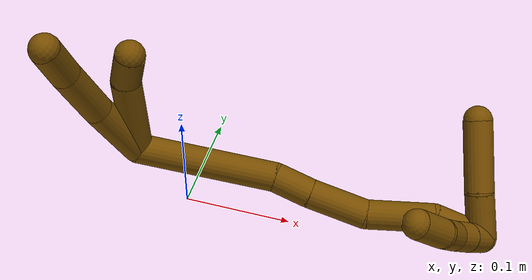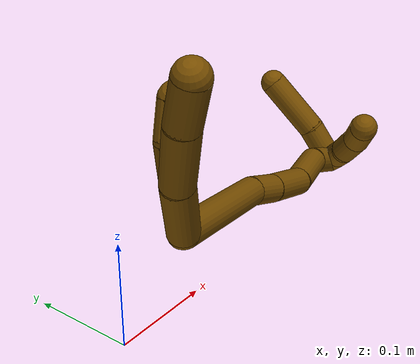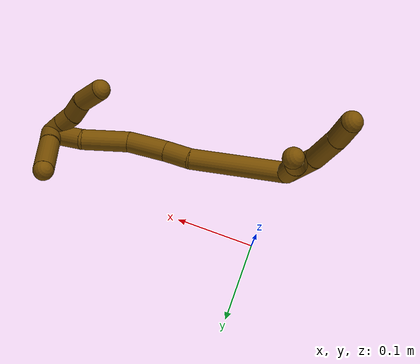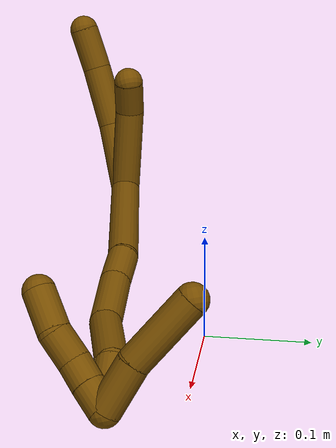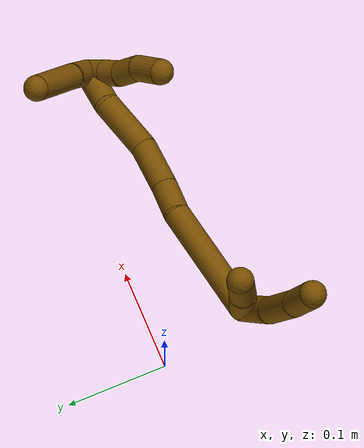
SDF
<sdf version="1.7">
 <world name="default">
  <model name="photoneo_s_sensor">
   <static>1</static>
   <pose>0 0 2 1.57079 1.57079 3.14159</pose>
   <link name="link">
    <inertial><mass>0.1</mass></inertial>
    <sensor name="sensor" type="depth">
     <update_rate>30</update_rate>
     <camera>
      <horizontal_fov>1.22</horizontal_fov>
      <image><width>1920</width><height>1200</height><format>B8G8R8</format></image>
      <clip><near>0.1</near><far>4</far></clip>
      <depth_camera><output>points</output></depth_camera>
     </camera>
     <plugin name="camera_plugin" filename="libgazebo_ros_depth_camera.so">
      <baseline>0.2</baseline>
      <alwaysOn>1</alwaysOn>
      <updateRate>0.0</updateRate>
      <cameraName>camera_ir</cameraName>
      <imageTopicName>/camera/color/image_raw</imageTopicName>
      <cameraInfoTopicName>/camera/color/camera_info</cameraInfoTopicName>
      <depthImageTopicName>/camera/depth/image_raw</depthImageTopicName>
      <depthImageCameraInfoTopicName>/camera/depth/camera_info</depthImageCameraInfoTopicName>
      <pointCloudTopicName>/camera/depth/points</pointCloudTopicName>
      <frameName>fr_optical</frameName>
      <pointCloudCutoff>0.1</pointCloudCutoff>
      <pointCloudCutoffMax>2.0</pointCloudCutoffMax>
      <distortionK1>0</distortionK1>
      <distortionK2>0</distortionK2>
      <distortionK3>0</distortionK3>
      <distortionT1>0</distortionT1>
      <distortionT2>0</distortionT2>
      <CxPrime>0</CxPrime>
      <Cx>0</Cx>
      <Cy>0</Cy>
      <focalLength>0</focalLength>
      <hackBaseline>0</hackBaseline>
     </plugin>
    </sensor>
   </link>
  </model>
  <model name="12">
   <static>0</static>
   <link name="12">
    <collision name="collision-cylinder-e_1_2_8">
     <pose>0.001007 0.001235 0.029612 -0.041697 0.033976 -0.000709</pose>
     <geometry><cylinder><radius>0.0125</radius><length>0.059311</length></cylinder></geometry>
     <surface>
      <friction><ode><mu>1.16</mu><mu2>1.16</mu2><slip1>0</slip1><slip2>0</slip2></ode></friction>
      <contact><ode><kp>1e+06</kp><kd>1</kd><max_vel>0</max_vel><min_depth>0.001</min_depth></ode></contact>
     </surface>
    </collision>
    <visual name="visual-cylinder-e_1_2_8">
     <pose>0.001007 0.001235 0.029612 -0.041697 0.033976 -0.000709</pose>
     <geometry><cylinder><radius>0.0125</radius><length>0.059311</length></cylinder></geometry>
     <material><ambient>0.466667 0.301961 0 1</ambient></material>
    </visual>
    <collision name="collision-cylinder-e_2_8_9">
     <pose>0.006759 0.00497 0.08556 -0.094598 0.177458 -0.008422</pose>
     <geometry><cylinder><radius>0.0125</radius><length>0.05375</length></cylinder></geometry>
     <surface>
      <friction><ode><mu>1.16</mu><mu2>1.16</mu2><slip1>0</slip1><slip2>0</slip2></ode></friction>
      <contact><ode><kp>1e+06</kp><kd>1</kd><max_vel>0</max_vel><min_depth>0.001</min_depth></ode></contact>
     </surface>
    </collision>
    <visual name="visual-cylinder-e_2_8_9">
     <pose>0.006759 0.00497 0.08556 -0.094598 0.177458 -0.008422</pose>
     <geometry><cylinder><radius>0.0125</radius><length>0.05375</length></cylinder></geometry>
     <material><ambient>0.466667 0.301961 0 1</ambient></material>
    </visual>
    <collision name="collision-cylinder-e_3_9_6">
     <pose>0.016353 0.009718 0.129573 -0.126567 0.265705 -0.016937</pose>
     <geometry><cylinder><radius>0.0125</radius><length>0.036939</length></cylinder></geometry>
     <surface>
      <friction><ode><mu>1.16</mu><mu2>1.16</mu2><slip1>0</slip1><slip2>0</slip2></ode></friction>
      <contact><ode><kp>1e+06</kp><kd>1</kd><max_vel>0</max_vel><min_depth>0.001</min_depth></ode></contact>
     </surface>
    </collision>
    <visual name="visual-cylinder-e_3_9_6">
     <pose>0.016353 0.009718 0.129573 -0.126567 0.265705 -0.016937</pose>
     <geometry><cylinder><radius>0.0125</radius><length>0.036939</length></cylinder></geometry>
     <material><ambient>0.466667 0.301961 0 1</ambient></material>
    </visual>
    <collision name="collision-cylinder-e_1_2_10">
     <pose>0.003299 0.017262 0.0311 -0.506706 0.09247 -0.023958</pose>
     <geometry><cylinder><radius>0.0125</radius><length>0.071444</length></cylinder></geometry>
     <surface>
      <friction><ode><mu>1.16</mu><mu2>1.16</mu2><slip1>0</slip1><slip2>0</slip2></ode></friction>
      <contact><ode><kp>1e+06</kp><kd>1</kd><max_vel>0</max_vel><min_depth>0.001</min_depth></ode></contact>
     </surface>
    </collision>
    <visual name="visual-cylinder-e_1_2_10">
     <pose>0.003299 0.017262 0.0311 -0.506706 0.09247 -0.023958</pose>
     <geometry><cylinder><radius>0.0125</radius><length>0.071444</length></cylinder></geometry>
     <material><ambient>0.466667 0.301961 0 1</ambient></material>
    </visual>
    <collision name="collision-cylinder-e_2_10_5">
     <pose>0.011288 0.04296 0.072721 -0.675873 0.334772 -0.118617</pose>
     <geometry><cylinder><radius>0.0125</radius><length>0.028556</length></cylinder></geometry>
     <surface>
      <friction><ode><mu>1.16</mu><mu2>1.16</mu2><slip1>0</slip1><slip2>0</slip2></ode></friction>
      <contact><ode><kp>1e+06</kp><kd>1</kd><max_vel>0</max_vel><min_depth>0.001</min_depth></ode></contact>
     </surface>
    </collision>
    <visual name="visual-cylinder-e_2_10_5">
     <pose>0.011288 0.04296 0.072721 -0.675873 0.334772 -0.118617</pose>
     <geometry><cylinder><radius>0.0125</radius><length>0.028556</length></cylinder></geometry>
     <material><ambient>0.466667 0.301961 0 1</ambient></material>
    </visual>
    <collision name="collision-cylinder-e_1_2_11">
     <pose>0.034035 0.030005 -0.036315 -2.45106 0.625669 -1.46487</pose>
     <geometry><cylinder><radius>0.0125</radius><length>0.116232</length></cylinder></geometry>
     <surface>
      <friction><ode><mu>1.16</mu><mu2>1.16</mu2><slip1>0</slip1><slip2>0</slip2></ode></friction>
      <contact><ode><kp>1e+06</kp><kd>1</kd><max_vel>0</max_vel><min_depth>0.001</min_depth></ode></contact>
     </surface>
    </collision>
    <visual name="visual-cylinder-e_1_2_11">
     <pose>0.034035 0.030005 -0.036315 -2.45106 0.625669 -1.46487</pose>
     <geometry><cylinder><radius>0.0125</radius><length>0.116232</length></cylinder></geometry>
     <material><ambient>0.466667 0.301961 0 1</ambient></material>
    </visual>
    <collision name="collision-cylinder-e_2_11_12">
     <pose>0.078866 0.064976 -0.083496 -2.71285 0.734872 -2.11207</pose>
     <geometry><cylinder><radius>0.0125</radius><length>0.032204</length></cylinder></geometry>
     <surface>
      <friction><ode><mu>1.16</mu><mu2>1.16</mu2><slip1>0</slip1><slip2>0</slip2></ode></friction>
      <contact><ode><kp>1e+06</kp><kd>1</kd><max_vel>0</max_vel><min_depth>0.001</min_depth></ode></contact>
     </surface>
    </collision>
    <visual name="visual-cylinder-e_2_11_12">
     <pose>0.078866 0.064976 -0.083496 -2.71285 0.734872 -2.11207</pose>
     <geometry><cylinder><radius>0.0125</radius><length>0.032204</length></cylinder></geometry>
     <material><ambient>0.466667 0.301961 0 1</ambient></material>
    </visual>
    <collision name="collision-cylinder-e_3_12_13">
     <pose>0.105691 0.079391 -0.110786 -2.61955 0.702089 -1.88121</pose>
     <geometry><cylinder><radius>0.0125</radius><length>0.049637</length></cylinder></geometry>
     <surface>
      <friction><ode><mu>1.16</mu><mu2>1.16</mu2><slip1>0</slip1><slip2>0</slip2></ode></friction>
      <contact><ode><kp>1e+06</kp><kd>1</kd><max_vel>0</max_vel><min_depth>0.001</min_depth></ode></contact>
     </surface>
    </collision>
    <visual name="visual-cylinder-e_3_12_13">
     <pose>0.105691 0.079391 -0.110786 -2.61955 0.702089 -1.88121</pose>
     <geometry><cylinder><radius>0.0125</radius><length>0.049637</length></cylinder></geometry>
     <material><ambient>0.466667 0.301961 0 1</ambient></material>
    </visual>
    <collision name="collision-cylinder-e_4_13_14">
     <pose>0.136698 0.107178 -0.143329 -2.29184 0.550291 -1.11572</pose>
     <geometry><cylinder><radius>0.0125</radius><length>0.057286</length></cylinder></geometry>
     <surface>
      <friction><ode><mu>1.16</mu><mu2>1.16</mu2><slip1>0</slip1><slip2>0</slip2></ode></friction>
      <contact><ode><kp>1e+06</kp><kd>1</kd><max_vel>0</max_vel><min_depth>0.001</min_depth></ode></contact>
     </surface>
    </collision>
    <visual name="visual-cylinder-e_4_13_14">
     <pose>0.136698 0.107178 -0.143329 -2.29184 0.550291 -1.11572</pose>
     <geometry><cylinder><radius>0.0125</radius><length>0.057286</length></cylinder></geometry>
     <material><ambient>0.466667 0.301961 0 1</ambient></material>
    </visual>
    <collision name="collision-cylinder-e_5_14_1">
     <pose>0.164877 0.133313 -0.175668 -2.69355 0.632823 -1.92565</pose>
     <geometry><cylinder><radius>0.0125</radius><length>0.044641</length></cylinder></geometry>
     <surface>
      <friction><ode><mu>1.16</mu><mu2>1.16</mu2><slip1>0</slip1><slip2>0</slip2></ode></friction>
      <contact><ode><kp>1e+06</kp><kd>1</kd><max_vel>0</max_vel><min_depth>0.001</min_depth></ode></contact>
     </surface>
    </collision>
    <visual name="visual-cylinder-e_5_14_1">
     <pose>0.164877 0.133313 -0.175668 -2.69355 0.632823 -1.92565</pose>
     <geometry><cylinder><radius>0.0125</radius><length>0.044641</length></cylinder></geometry>
     <material><ambient>0.466667 0.301961 0 1</ambient></material>
    </visual>
    <collision name="collision-cylinder-e_1_1_15">
     <pose>0.171608 0.153902 -0.177949 -0.742437 -0.329481 0.129248</pose>
     <geometry><cylinder><radius>0.0125</radius><length>0.039991</length></cylinder></geometry>
     <surface>
      <friction><ode><mu>1.16</mu><mu2>1.16</mu2><slip1>0</slip1><slip2>0</slip2></ode></friction>
      <contact><ode><kp>1e+06</kp><kd>1</kd><max_vel>0</max_vel><min_depth>0.001</min_depth></ode></contact>
     </surface>
    </collision>
    <visual name="visual-cylinder-e_1_1_15">
     <pose>0.171608 0.153902 -0.177949 -0.742437 -0.329481 0.129248</pose>
     <geometry><cylinder><radius>0.0125</radius><length>0.039991</length></cylinder></geometry>
     <material><ambient>0.466667 0.301961 0 1</ambient></material>
    </visual>
    <collision name="collision-cylinder-e_2_15_4">
     <pose>0.151826 0.187941 -0.147528 -0.911102 -0.459699 0.228271</pose>
     <geometry><cylinder><radius>0.0125</radius><length>0.060009</length></cylinder></geometry>
     <surface>
      <friction><ode><mu>1.16</mu><mu2>1.16</mu2><slip1>0</slip1><slip2>0</slip2></ode></friction>
      <contact><ode><kp>1e+06</kp><kd>1</kd><max_vel>0</max_vel><min_depth>0.001</min_depth></ode></contact>
     </surface>
    </collision>
    <visual name="visual-cylinder-e_2_15_4">
     <pose>0.151826 0.187941 -0.147528 -0.911102 -0.459699 0.228271</pose>
     <geometry><cylinder><radius>0.0125</radius><length>0.060009</length></cylinder></geometry>
     <material><ambient>0.466667 0.301961 0 1</ambient></material>
    </visual>
    <collision name="collision-cylinder-e_1_1_16">
     <pose>0.179582 0.136616 -0.182204 0.434479 0.139957 0.03094</pose>
     <geometry><cylinder><radius>0.0125</radius><length>0.021566</length></cylinder></geometry>
     <surface>
      <friction><ode><mu>1.16</mu><mu2>1.16</mu2><slip1>0</slip1><slip2>0</slip2></ode></friction>
      <contact><ode><kp>1e+06</kp><kd>1</kd><max_vel>0</max_vel><min_depth>0.001</min_depth></ode></contact>
     </surface>
    </collision>
    <visual name="visual-cylinder-e_1_1_16">
     <pose>0.179582 0.136616 -0.182204 0.434479 0.139957 0.03094</pose>
     <geometry><cylinder><radius>0.0125</radius><length>0.021566</length></cylinder></geometry>
     <material><ambient>0.466667 0.301961 0 1</ambient></material>
    </visual>
    <collision name="collision-cylinder-e_2_16_17">
     <pose>0.182066 0.128064 -0.163409 0.418967 0.097935 0.020837</pose>
     <geometry><cylinder><radius>0.0125</radius><length>0.020042</length></cylinder></geometry>
     <surface>
      <friction><ode><mu>1.16</mu><mu2>1.16</mu2><slip1>0</slip1><slip2>0</slip2></ode></friction>
      <contact><ode><kp>1e+06</kp><kd>1</kd><max_vel>0</max_vel><min_depth>0.001</min_depth></ode></contact>
     </surface>
    </collision>
    <visual name="visual-cylinder-e_2_16_17">
     <pose>0.182066 0.128064 -0.163409 0.418967 0.097935 0.020837</pose>
     <geometry><cylinder><radius>0.0125</radius><length>0.020042</length></cylinder></geometry>
     <material><ambient>0.466667 0.301961 0 1</ambient></material>
    </visual>
    <collision name="collision-cylinder-e_3_17_18">
     <pose>0.186982 0.120895 -0.142617 0.260315 0.314788 0.041543</pose>
     <geometry><cylinder><radius>0.0125</radius><length>0.025426</length></cylinder></geometry>
     <surface>
      <friction><ode><mu>1.16</mu><mu2>1.16</mu2><slip1>0</slip1><slip2>0</slip2></ode></friction>
      <contact><ode><kp>1e+06</kp><kd>1</kd><max_vel>0</max_vel><min_depth>0.001</min_depth></ode></contact>
     </surface>
    </collision>
    <visual name="visual-cylinder-e_3_17_18">
     <pose>0.186982 0.120895 -0.142617 0.260315 0.314788 0.041543</pose>
     <geometry><cylinder><radius>0.0125</radius><length>0.025426</length></cylinder></geometry>
     <material><ambient>0.466667 0.301961 0 1</ambient></material>
    </visual>
    <collision name="collision-cylinder-e_4_18_3">
     <pose>0.190823 0.112977 -0.11517 0.295948 -0.005777 -0.000861</pose>
     <geometry><cylinder><radius>0.0125</radius><length>0.032966</length></cylinder></geometry>
     <surface>
      <friction><ode><mu>1.16</mu><mu2>1.16</mu2><slip1>0</slip1><slip2>0</slip2></ode></friction>
      <contact><ode><kp>1e+06</kp><kd>1</kd><max_vel>0</max_vel><min_depth>0.001</min_depth></ode></contact>
     </surface>
    </collision>
    <visual name="visual-cylinder-e_4_18_3">
     <pose>0.190823 0.112977 -0.11517 0.295948 -0.005777 -0.000861</pose>
     <geometry><cylinder><radius>0.0125</radius><length>0.032966</length></cylinder></geometry>
     <material><ambient>0.466667 0.301961 0 1</ambient></material>
    </visual>
    <collision name="collision-sphere-3">
     <pose>0.190728 0.10817 -0.099403 0 -0 0</pose>
     <geometry><sphere><radius>0.0125</radius></sphere></geometry>
     <surface>
      <friction><ode><mu>1.16</mu><mu2>1.16</mu2><slip1>0</slip1><slip2>0</slip2></ode></friction>
      <contact><ode><kp>1e+06</kp><kd>1</kd><max_vel>0</max_vel><min_depth>0.001</min_depth></ode></contact>
     </surface>
    </collision>
    <visual name="visual-sphere-3">
     <pose>0.190728 0.10817 -0.099403 0 -0 0</pose>
     <geometry><sphere><radius>0.0125</radius></sphere></geometry>
     <material><ambient>0.466667 0.301961 0 1</ambient></material>
    </visual>
    <collision name="collision-sphere-5">
     <pose>0.015979 0.051396 0.083241 0 -0 0</pose>
     <geometry><sphere><radius>0.0125</radius></sphere></geometry>
     <surface>
      <friction><ode><mu>1.16</mu><mu2>1.16</mu2><slip1>0</slip1><slip2>0</slip2></ode></friction>
      <contact><ode><kp>1e+06</kp><kd>1</kd><max_vel>0</max_vel><min_depth>0.001</min_depth></ode></contact>
     </surface>
    </collision>
    <visual name="visual-sphere-5">
     <pose>0.015979 0.051396 0.083241 0 -0 0</pose>
     <geometry><sphere><radius>0.0125</radius></sphere></geometry>
     <material><ambient>0.466667 0.301961 0 1</ambient></material>
    </visual>
    <collision name="collision-sphere-10">
     <pose>0.006597 0.034524 0.0622 0 -0 0</pose>
     <geometry><sphere><radius>0.0125</radius></sphere></geometry>
     <surface>
      <friction><ode><mu>1.16</mu><mu2>1.16</mu2><slip1>0</slip1><slip2>0</slip2></ode></friction>
      <contact><ode><kp>1e+06</kp><kd>1</kd><max_vel>0</max_vel><min_depth>0.001</min_depth></ode></contact>
     </surface>
    </collision>
    <visual name="visual-sphere-10">
     <pose>0.006597 0.034524 0.0622 0 -0 0</pose>
     <geometry><sphere><radius>0.0125</radius></sphere></geometry>
     <material><ambient>0.466667 0.301961 0 1</ambient></material>
    </visual>
    <collision name="collision-sphere-6">
     <pose>0.021203 0.011967 0.147252 0 -0 0</pose>
     <geometry><sphere><radius>0.0125</radius></sphere></geometry>
     <surface>
      <friction><ode><mu>1.16</mu><mu2>1.16</mu2><slip1>0</slip1><slip2>0</slip2></ode></friction>
      <contact><ode><kp>1e+06</kp><kd>1</kd><max_vel>0</max_vel><min_depth>0.001</min_depth></ode></contact>
     </surface>
    </collision>
    <visual name="visual-sphere-6">
     <pose>0.021203 0.011967 0.147252 0 -0 0</pose>
     <geometry><sphere><radius>0.0125</radius></sphere></geometry>
     <material><ambient>0.466667 0.301961 0 1</ambient></material>
    </visual>
    <collision name="collision-sphere-9">
     <pose>0.011503 0.007468 0.111895 0 -0 0</pose>
     <geometry><sphere><radius>0.0125</radius></sphere></geometry>
     <surface>
      <friction><ode><mu>1.16</mu><mu2>1.16</mu2><slip1>0</slip1><slip2>0</slip2></ode></friction>
      <contact><ode><kp>1e+06</kp><kd>1</kd><max_vel>0</max_vel><min_depth>0.001</min_depth></ode></contact>
     </surface>
    </collision>
    <visual name="visual-sphere-9">
     <pose>0.011503 0.007468 0.111895 0 -0 0</pose>
     <geometry><sphere><radius>0.0125</radius></sphere></geometry>
     <material><ambient>0.466667 0.301961 0 1</ambient></material>
    </visual>
    <collision name="collision-sphere-2">
     <geometry><sphere><radius>0.0125</radius></sphere></geometry>
     <surface>
      <friction><ode><mu>1.16</mu><mu2>1.16</mu2><slip1>0</slip1><slip2>0</slip2></ode></friction>
      <contact><ode><kp>1e+06</kp><kd>1</kd><max_vel>0</max_vel><min_depth>0.001</min_depth></ode></contact>
     </surface>
    </collision>
    <visual name="visual-sphere-2">
     <geometry><sphere><radius>0.0125</radius></sphere></geometry>
     <material><ambient>0.466667 0.301961 0 1</ambient></material>
    </visual>
    <collision name="collision-sphere-8">
     <pose>0.002015 0.002471 0.059225 0 -0 0</pose>
     <geometry><sphere><radius>0.0125</radius></sphere></geometry>
     <surface>
      <friction><ode><mu>1.16</mu><mu2>1.16</mu2><slip1>0</slip1><slip2>0</slip2></ode></friction>
      <contact><ode><kp>1e+06</kp><kd>1</kd><max_vel>0</max_vel><min_depth>0.001</min_depth></ode></contact>
     </surface>
    </collision>
    <visual name="visual-sphere-8">
     <pose>0.002015 0.002471 0.059225 0 -0 0</pose>
     <geometry><sphere><radius>0.0125</radius></sphere></geometry>
     <material><ambient>0.466667 0.301961 0 1</ambient></material>
    </visual>
    <collision name="collision-sphere-11">
     <pose>0.06807 0.060009 -0.072631 0 -0 0</pose>
     <geometry><sphere><radius>0.0125</radius></sphere></geometry>
     <surface>
      <friction><ode><mu>1.16</mu><mu2>1.16</mu2><slip1>0</slip1><slip2>0</slip2></ode></friction>
      <contact><ode><kp>1e+06</kp><kd>1</kd><max_vel>0</max_vel><min_depth>0.001</min_depth></ode></contact>
     </surface>
    </collision>
    <visual name="visual-sphere-11">
     <pose>0.06807 0.060009 -0.072631 0 -0 0</pose>
     <geometry><sphere><radius>0.0125</radius></sphere></geometry>
     <material><ambient>0.466667 0.301961 0 1</ambient></material>
    </visual>
    <collision name="collision-sphere-12">
     <pose>0.089663 0.069942 -0.094361 0 -0 0</pose>
     <geometry><sphere><radius>0.0125</radius></sphere></geometry>
     <surface>
      <friction><ode><mu>1.16</mu><mu2>1.16</mu2><slip1>0</slip1><slip2>0</slip2></ode></friction>
      <contact><ode><kp>1e+06</kp><kd>1</kd><max_vel>0</max_vel><min_depth>0.001</min_depth></ode></contact>
     </surface>
    </collision>
    <visual name="visual-sphere-12">
     <pose>0.089663 0.069942 -0.094361 0 -0 0</pose>
     <geometry><sphere><radius>0.0125</radius></sphere></geometry>
     <material><ambient>0.466667 0.301961 0 1</ambient></material>
    </visual>
    <collision name="collision-sphere-13">
     <pose>0.121719 0.08884 -0.127211 0 -0 0</pose>
     <geometry><sphere><radius>0.0125</radius></sphere></geometry>
     <surface>
      <friction><ode><mu>1.16</mu><mu2>1.16</mu2><slip1>0</slip1><slip2>0</slip2></ode></friction>
      <contact><ode><kp>1e+06</kp><kd>1</kd><max_vel>0</max_vel><min_depth>0.001</min_depth></ode></contact>
     </surface>
    </collision>
    <visual name="visual-sphere-13">
     <pose>0.121719 0.08884 -0.127211 0 -0 0</pose>
     <geometry><sphere><radius>0.0125</radius></sphere></geometry>
     <material><ambient>0.466667 0.301961 0 1</ambient></material>
    </visual>
    <collision name="collision-sphere-14">
     <pose>0.151676 0.125516 -0.159446 0 -0 0</pose>
     <geometry><sphere><radius>0.0125</radius></sphere></geometry>
     <surface>
      <friction><ode><mu>1.16</mu><mu2>1.16</mu2><slip1>0</slip1><slip2>0</slip2></ode></friction>
      <contact><ode><kp>1e+06</kp><kd>1</kd><max_vel>0</max_vel><min_depth>0.001</min_depth></ode></contact>
     </surface>
    </collision>
    <visual name="visual-sphere-14">
     <pose>0.151676 0.125516 -0.159446 0 -0 0</pose>
     <geometry><sphere><radius>0.0125</radius></sphere></geometry>
     <material><ambient>0.466667 0.301961 0 1</ambient></material>
    </visual>
    <collision name="collision-sphere-1">
     <pose>0.178078 0.14111 -0.19189 0 -0 0</pose>
     <geometry><sphere><radius>0.0125</radius></sphere></geometry>
     <surface>
      <friction><ode><mu>1.16</mu><mu2>1.16</mu2><slip1>0</slip1><slip2>0</slip2></ode></friction>
      <contact><ode><kp>1e+06</kp><kd>1</kd><max_vel>0</max_vel><min_depth>0.001</min_depth></ode></contact>
     </surface>
    </collision>
    <visual name="visual-sphere-1">
     <pose>0.178078 0.14111 -0.19189 0 -0 0</pose>
     <geometry><sphere><radius>0.0125</radius></sphere></geometry>
     <material><ambient>0.466667 0.301961 0 1</ambient></material>
    </visual>
    <collision name="collision-sphere-18">
     <pose>0.190918 0.117784 -0.130936 0 -0 0</pose>
     <geometry><sphere><radius>0.0125</radius></sphere></geometry>
     <surface>
      <friction><ode><mu>1.16</mu><mu2>1.16</mu2><slip1>0</slip1><slip2>0</slip2></ode></friction>
      <contact><ode><kp>1e+06</kp><kd>1</kd><max_vel>0</max_vel><min_depth>0.001</min_depth></ode></contact>
     </surface>
    </collision>
    <visual name="visual-sphere-18">
     <pose>0.190918 0.117784 -0.130936 0 -0 0</pose>
     <geometry><sphere><radius>0.0125</radius></sphere></geometry>
     <material><ambient>0.466667 0.301961 0 1</ambient></material>
    </visual>
    <collision name="collision-sphere-15">
     <pose>0.165138 0.166693 -0.164008 0 -0 0</pose>
     <geometry><sphere><radius>0.0125</radius></sphere></geometry>
     <surface>
      <friction><ode><mu>1.16</mu><mu2>1.16</mu2><slip1>0</slip1><slip2>0</slip2></ode></friction>
      <contact><ode><kp>1e+06</kp><kd>1</kd><max_vel>0</max_vel><min_depth>0.001</min_depth></ode></contact>
     </surface>
    </collision>
    <visual name="visual-sphere-15">
     <pose>0.165138 0.166693 -0.164008 0 -0 0</pose>
     <geometry><sphere><radius>0.0125</radius></sphere></geometry>
     <material><ambient>0.466667 0.301961 0 1</ambient></material>
    </visual>
    <collision name="collision-sphere-4">
     <pose>0.138514 0.209188 -0.131048 0 -0 0</pose>
     <geometry><sphere><radius>0.0125</radius></sphere></geometry>
     <surface>
      <friction><ode><mu>1.16</mu><mu2>1.16</mu2><slip1>0</slip1><slip2>0</slip2></ode></friction>
      <contact><ode><kp>1e+06</kp><kd>1</kd><max_vel>0</max_vel><min_depth>0.001</min_depth></ode></contact>
     </surface>
    </collision>
    <visual name="visual-sphere-4">
     <pose>0.138514 0.209188 -0.131048 0 -0 0</pose>
     <geometry><sphere><radius>0.0125</radius></sphere></geometry>
     <material><ambient>0.466667 0.301961 0 1</ambient></material>
    </visual>
    <collision name="collision-sphere-16">
     <pose>0.181086 0.132121 -0.172519 0 -0 0</pose>
     <geometry><sphere><radius>0.0125</radius></sphere></geometry>
     <surface>
      <friction><ode><mu>1.16</mu><mu2>1.16</mu2><slip1>0</slip1><slip2>0</slip2></ode></friction>
      <contact><ode><kp>1e+06</kp><kd>1</kd><max_vel>0</max_vel><min_depth>0.001</min_depth></ode></contact>
     </surface>
    </collision>
    <visual name="visual-sphere-16">
     <pose>0.181086 0.132121 -0.172519 0 -0 0</pose>
     <geometry><sphere><radius>0.0125</radius></sphere></geometry>
     <material><ambient>0.466667 0.301961 0 1</ambient></material>
    </visual>
    <collision name="collision-sphere-17">
     <pose>0.183046 0.124007 -0.154298 0 -0 0</pose>
     <geometry><sphere><radius>0.0125</radius></sphere></geometry>
     <surface>
      <friction><ode><mu>1.16</mu><mu2>1.16</mu2><slip1>0</slip1><slip2>0</slip2></ode></friction>
      <contact><ode><kp>1e+06</kp><kd>1</kd><max_vel>0</max_vel><min_depth>0.001</min_depth></ode></contact>
     </surface>
    </collision>
    <visual name="visual-sphere-17">
     <pose>0.183046 0.124007 -0.154298 0 -0 0</pose>
     <geometry><sphere><radius>0.0125</radius></sphere></geometry>
     <material><ambient>0.466667 0.301961 0 1</ambient></material>
    </visual>
    <inertial>
     <pose>0.084078 0.072687 -0.058158 0 -0 0</pose>
     <mass>0.75</mass>
     <inertia><ixx>-2e-06</ixx><ixy>0</ixy><ixz>0</ixz><iyy>3.6e-05</iyy><iyz>0</iyz><izz>-0.000215</izz></inertia>
    </inertial>
   </link>
   <pose>-0.008697 -0.074055 0.141753 0.514058 -0.192447 -0.713061</pose>
  </model>
 </world>
</sdf>
